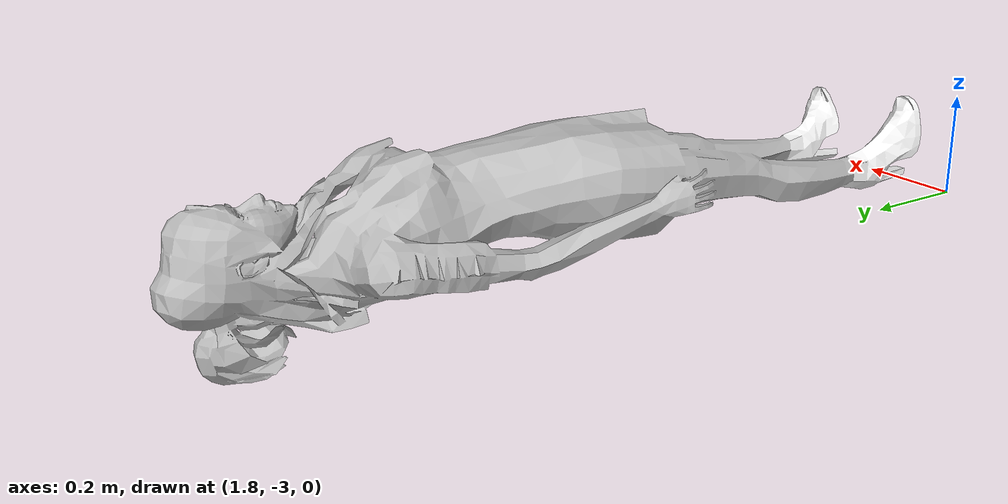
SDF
<?xml version='1.0'?>
<sdf version='1.5'>
  <model name='victimWoman'>
    <static>true</static>
    <pose frame=''>2 -3 0.08 0 -0 0</pose>
    <link name='defaultModel_0::custom_0'>
      <pose frame=''>0 0 0 0 -0 0</pose>
      <gravity>1</gravity>
      <self_collide>0</self_collide>
      <kinematic>0</kinematic>
      <visual name='custom_0_visual'>
        <pose frame=''>0 0 0 0 -0 0</pose>
        <geometry>
          <mesh>
            <uri>model://victimWoman/girl-brunette-dae/girl-brunette.dae</uri>
            <scale>1 1 1</scale>
          </mesh>
        </geometry>
        <material>
          <script>
            <uri>file://media/materials/scripts/gazebo.material</uri>
          </script>
        </material>
      </visual>
      <collision name='defaultModel_0::custom_0_collision'>
        <geometry>
          <mesh>
            <uri>model://victimWoman/girl-brunette-dae/girl-brunette.dae</uri>
            <scale>1 1 1</scale>
          </mesh>
        </geometry>
        <pose frame=''>0 0 0 0 -0 0</pose>
      </collision>
    </link>

    <allow_auto_disable>1</allow_auto_disable>
  </model>
</sdf>
